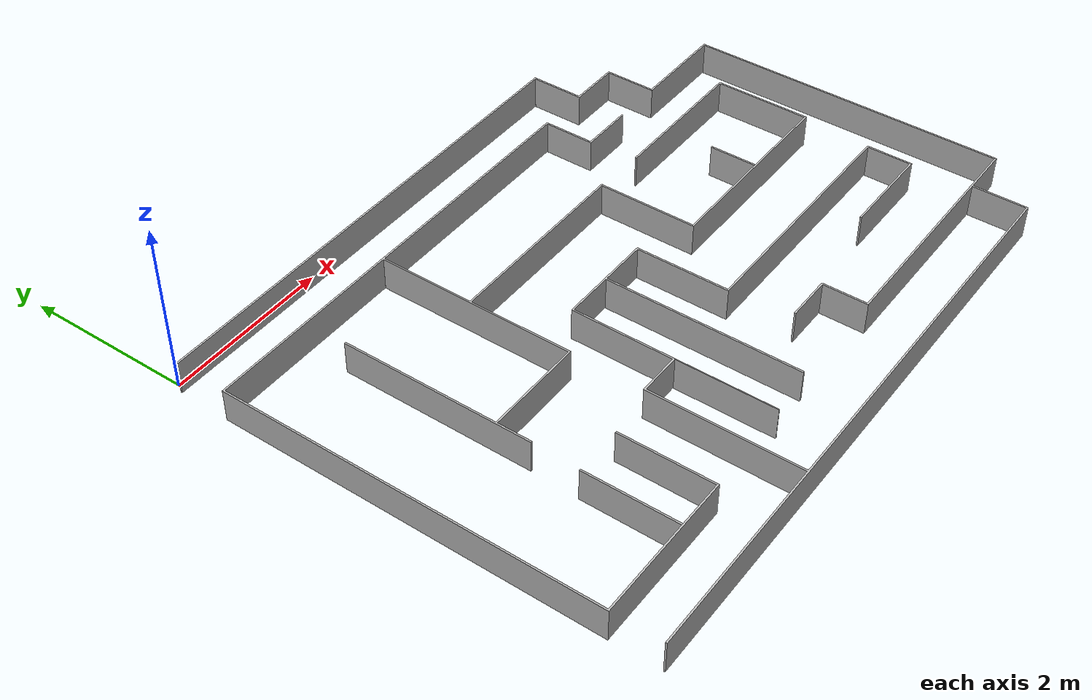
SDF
<?xml version="1.0" ?>
<sdf version="1.4">
  <model name="labyrinth">
    <pose> 0 0 -0.1 1.57 0 0</pose>
    <static>true</static>
    <link name="link">
      <collision name="collision">
        <geometry>
          <mesh>
            <uri>model://labyrinth_model/meshes/turtlebotMap.stl</uri>
            <scale>0.001 0.001 0.001</scale>
          </mesh>
        </geometry>
      </collision>
      <visual name="visual">
        <geometry>
          <mesh>
            <uri>model://labyrinth_model/meshes/turtlebotMap.stl</uri>
            <scale>0.001 0.001 0.001</scale>
          </mesh>
        </geometry>
      </visual>
    </link>
  </model>
</sdf>
